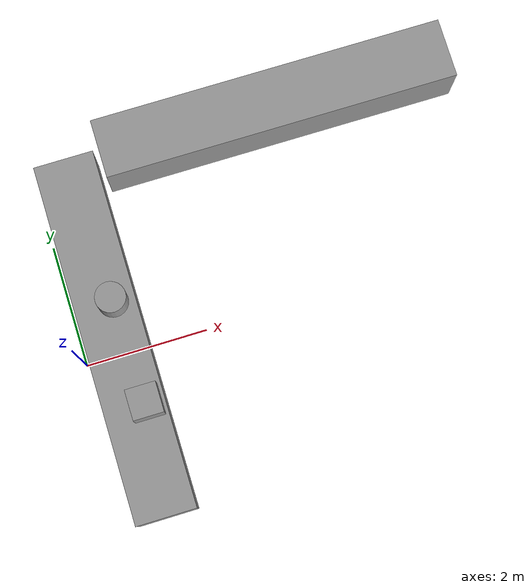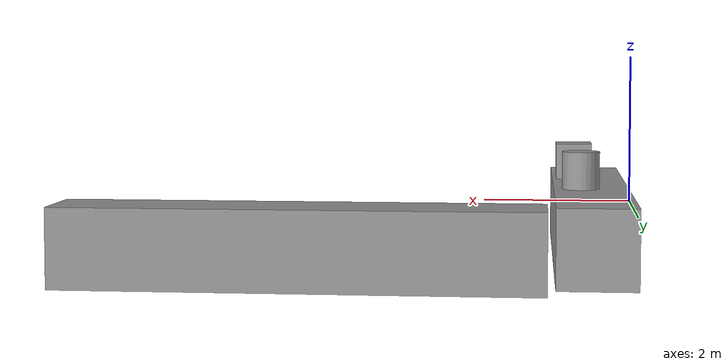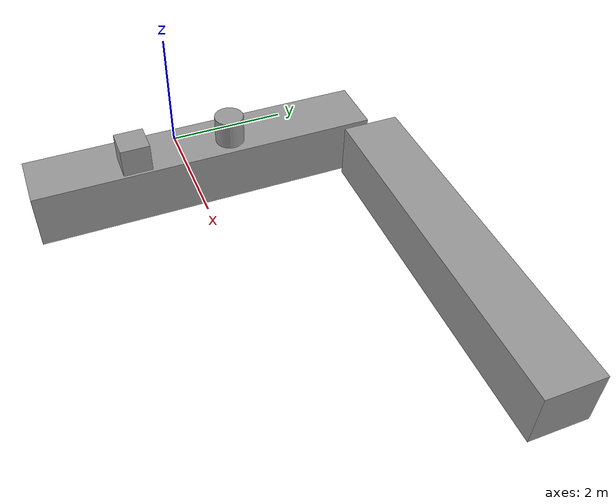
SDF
<?xml version='1.0'?>
<sdf version='1.6'>
  <model name='test'>
    <link name='link_0'>
      <inertial>
        <mass>3.59134</mass>
        <inertia>
          <ixx>10.0363</ixx>
          <ixy>0</ixy>
          <ixz>0</ixz>
          <iyy>0.417919</iyy>
          <iyz>0</iyz>
          <izz>9.85568</izz>
        </inertia>
        <pose frame=''>0 0 0 0 -0 0</pose>
      </inertial>
      <pose frame=''>0.553332 0.333334 -0.25 0 -0 0</pose>
      <gravity>1</gravity>
      <self_collide>0</self_collide>
      <kinematic>0</kinematic>
      <enable_wind>0</enable_wind>
      <visual name='visual'>
        <pose frame=''>0 0 0 0 -0 0</pose>
        <geometry>
          <box>
            <size>1 6 1</size>
          </box>
        </geometry>
        <material>
          <lighting>1</lighting>
          <script>
            <uri>file://media/materials/scripts/gazebo.material</uri>
            <name>Gazebo/Grey</name>
          </script>
          <shader type='vertex'>
            <normal_map>__default__</normal_map>
          </shader>
          <ambient>0.3 0.3 0.3 1</ambient>
          <diffuse>0.7 0.7 0.7 1</diffuse>
          <specular>0.01 0.01 0.01 1</specular>
          <emissive>0 0 0 1</emissive>
        </material>
        <transparency>0</transparency>
        <cast_shadows>1</cast_shadows>
      </visual>
      <collision name='collision'>
        <laser_retro>0</laser_retro>
        <max_contacts>10</max_contacts>
        <pose frame=''>0 0 0 0 -0 0</pose>
        <geometry>
          <box>
            <size>1 6 1</size>
          </box>
        </geometry>
        <surface>
          <friction>
            <ode>
              <mu>1</mu>
              <mu2>1</mu2>
              <fdir1>0 0 0</fdir1>
              <slip1>0</slip1>
              <slip2>0</slip2>
            </ode>
            <torsional>
              <coefficient>1</coefficient>
              <patch_radius>0</patch_radius>
              <surface_radius>0</surface_radius>
              <use_patch_radius>1</use_patch_radius>
              <ode>
                <slip>0</slip>
              </ode>
            </torsional>
          </friction>
          <bounce>
            <restitution_coefficient>0</restitution_coefficient>
            <threshold>1e+06</threshold>
          </bounce>
          <contact>
            <collide_without_contact>0</collide_without_contact>
            <collide_without_contact_bitmask>1</collide_without_contact_bitmask>
            <collide_bitmask>1</collide_bitmask>
            <ode>
              <soft_cfm>0</soft_cfm>
              <soft_erp>0.2</soft_erp>
              <kp>1e+13</kp>
              <kd>1</kd>
              <max_vel>0.01</max_vel>
              <min_depth>0</min_depth>
            </ode>
            <bullet>
              <split_impulse>1</split_impulse>
              <split_impulse_penetration_threshold>-0.01</split_impulse_penetration_threshold>
              <soft_cfm>0</soft_cfm>
              <soft_erp>0.2</soft_erp>
              <kp>1e+13</kp>
              <kd>1</kd>
            </bullet>
          </contact>
        </surface>
      </collision>
    </link>
    <link name='link_0_clone'>
      <inertial>
        <mass>3.59134</mass>
        <inertia>
          <ixx>10.0363</ixx>
          <ixy>0</ixy>
          <ixz>0</ixz>
          <iyy>0.417919</iyy>
          <iyz>0</iyz>
          <izz>9.85568</izz>
        </inertia>
        <pose frame=''>0 0 0 0 -0 0</pose>
      </inertial>
      <pose frame=''>4.15333 3.33333 -0.25 0 -0 1.57</pose>
      <gravity>1</gravity>
      <self_collide>0</self_collide>
      <kinematic>0</kinematic>
      <enable_wind>0</enable_wind>
      <visual name='visual'>
        <pose frame=''>0 0 0 0 -0 0</pose>
        <geometry>
          <box>
            <size>1 6 1</size>
          </box>
        </geometry>
        <material>
          <lighting>1</lighting>
          <script>
            <uri>file://media/materials/scripts/gazebo.material</uri>
            <name>Gazebo/Grey</name>
          </script>
          <shader type='vertex'>
            <normal_map>__default__</normal_map>
          </shader>
          <ambient>0.3 0.3 0.3 1</ambient>
          <diffuse>0.7 0.7 0.7 1</diffuse>
          <specular>0.01 0.01 0.01 1</specular>
          <emissive>0 0 0 1</emissive>
        </material>
        <transparency>0</transparency>
        <cast_shadows>1</cast_shadows>
      </visual>
      <collision name='collision'>
        <laser_retro>0</laser_retro>
        <max_contacts>10</max_contacts>
        <pose frame=''>0 0 0 0 -0 0</pose>
        <geometry>
          <box>
            <size>1 6 1</size>
          </box>
        </geometry>
        <surface>
          <friction>
            <ode>
              <mu>1</mu>
              <mu2>1</mu2>
              <fdir1>0 0 0</fdir1>
              <slip1>0</slip1>
              <slip2>0</slip2>
            </ode>
            <torsional>
              <coefficient>1</coefficient>
              <patch_radius>0</patch_radius>
              <surface_radius>0</surface_radius>
              <use_patch_radius>1</use_patch_radius>
              <ode>
                <slip>0</slip>
              </ode>
            </torsional>
          </friction>
          <bounce>
            <restitution_coefficient>0</restitution_coefficient>
            <threshold>1e+06</threshold>
          </bounce>
          <contact>
            <collide_without_contact>0</collide_without_contact>
            <collide_without_contact_bitmask>1</collide_without_contact_bitmask>
            <collide_bitmask>1</collide_bitmask>
            <ode>
              <soft_cfm>0</soft_cfm>
              <soft_erp>0.2</soft_erp>
              <kp>1e+13</kp>
              <kd>1</kd>
              <max_vel>0.01</max_vel>
              <min_depth>0</min_depth>
            </ode>
            <bullet>
              <split_impulse>1</split_impulse>
              <split_impulse_penetration_threshold>-0.01</split_impulse_penetration_threshold>
              <soft_cfm>0</soft_cfm>
              <soft_erp>0.2</soft_erp>
              <kp>1e+13</kp>
              <kd>1</kd>
            </bullet>
          </contact>
        </surface>
      </collision>
    </link>
    <link name='link_1'>
      <inertial>
        <mass>1</mass>
        <inertia>
          <ixx>0.145833</ixx>
          <ixy>0</ixy>
          <ixz>0</ixz>
          <iyy>0.145833</iyy>
          <iyz>0</iyz>
          <izz>0.125</izz>
        </inertia>
        <pose frame=''>0 0 0 0 -0 0</pose>
      </inertial>
      <pose frame=''>0.693332 0.833334 0.5 0 -0 0</pose>
      <gravity>1</gravity>
      <self_collide>0</self_collide>
      <kinematic>0</kinematic>
      <enable_wind>0</enable_wind>
      <visual name='visual'>
        <pose frame=''>0 0 0 0 -0 0</pose>
        <geometry>
          <cylinder>
            <radius>0.25</radius>
            <length>0.5</length>
          </cylinder>
        </geometry>
        <material>
          <lighting>1</lighting>
          <script>
            <uri>file://media/materials/scripts/gazebo.material</uri>
            <name>Gazebo/Grey</name>
          </script>
          <shader type='vertex'>
            <normal_map>__default__</normal_map>
          </shader>
          <ambient>0.3 0.3 0.3 1</ambient>
          <diffuse>0.7 0.7 0.7 1</diffuse>
          <specular>0.01 0.01 0.01 1</specular>
          <emissive>0 0 0 1</emissive>
        </material>
        <transparency>0</transparency>
        <cast_shadows>1</cast_shadows>
      </visual>
      <collision name='collision'>
        <laser_retro>0</laser_retro>
        <max_contacts>10</max_contacts>
        <pose frame=''>0 0 0 0 -0 0</pose>
        <geometry>
          <cylinder>
            <radius>0.25</radius>
            <length>0.5</length>
          </cylinder>
        </geometry>
        <surface>
          <friction>
            <ode>
              <mu>1</mu>
              <mu2>1</mu2>
              <fdir1>0 0 0</fdir1>
              <slip1>0</slip1>
              <slip2>0</slip2>
            </ode>
            <torsional>
              <coefficient>1</coefficient>
              <patch_radius>0</patch_radius>
              <surface_radius>0</surface_radius>
              <use_patch_radius>1</use_patch_radius>
              <ode>
                <slip>0</slip>
              </ode>
            </torsional>
          </friction>
          <bounce>
            <restitution_coefficient>0</restitution_coefficient>
            <threshold>1e+06</threshold>
          </bounce>
          <contact>
            <collide_without_contact>0</collide_without_contact>
            <collide_without_contact_bitmask>1</collide_without_contact_bitmask>
            <collide_bitmask>1</collide_bitmask>
            <ode>
              <soft_cfm>0</soft_cfm>
              <soft_erp>0.2</soft_erp>
              <kp>1e+13</kp>
              <kd>1</kd>
              <max_vel>0.01</max_vel>
              <min_depth>0</min_depth>
            </ode>
            <bullet>
              <split_impulse>1</split_impulse>
              <split_impulse_penetration_threshold>-0.01</split_impulse_penetration_threshold>
              <soft_cfm>0</soft_cfm>
              <soft_erp>0.2</soft_erp>
              <kp>1e+13</kp>
              <kd>1</kd>
            </bullet>
          </contact>
        </surface>
      </collision>
    </link>
    <link name='link_2'>
      <inertial>
        <mass>1</mass>
        <inertia>
          <ixx>0.166667</ixx>
          <ixy>0</ixy>
          <ixz>0</ixz>
          <iyy>0.166667</iyy>
          <iyz>0</iyz>
          <izz>0.166667</izz>
        </inertia>
        <pose frame=''>0 0 0 0 -0 0</pose>
      </inertial>
      <pose frame=''>0.749999 -0.878445 0.5 0 -0 0</pose>
      <gravity>1</gravity>
      <self_collide>0</self_collide>
      <kinematic>0</kinematic>
      <enable_wind>0</enable_wind>
      <visual name='visual'>
        <pose frame=''>0 0 0 0 -0 0</pose>
        <geometry>
          <box>
            <size>0.5 0.5 0.5</size>
          </box>
        </geometry>
        <material>
          <lighting>1</lighting>
          <script>
            <uri>file://media/materials/scripts/gazebo.material</uri>
            <name>Gazebo/Grey</name>
          </script>
          <shader type='vertex'>
            <normal_map>__default__</normal_map>
          </shader>
          <ambient>0.3 0.3 0.3 1</ambient>
          <diffuse>0.7 0.7 0.7 1</diffuse>
          <specular>0.01 0.01 0.01 1</specular>
          <emissive>0 0 0 1</emissive>
        </material>
        <transparency>0</transparency>
        <cast_shadows>1</cast_shadows>
      </visual>
      <collision name='collision'>
        <laser_retro>0</laser_retro>
        <max_contacts>10</max_contacts>
        <pose frame=''>0 0 0 0 -0 0</pose>
        <geometry>
          <box>
            <size>0.5 0.5 0.5</size>
          </box>
        </geometry>
        <surface>
          <friction>
            <ode>
              <mu>1</mu>
              <mu2>1</mu2>
              <fdir1>0 0 0</fdir1>
              <slip1>0</slip1>
              <slip2>0</slip2>
            </ode>
            <torsional>
              <coefficient>1</coefficient>
              <patch_radius>0</patch_radius>
              <surface_radius>0</surface_radius>
              <use_patch_radius>1</use_patch_radius>
              <ode>
                <slip>0</slip>
              </ode>
            </torsional>
          </friction>
          <bounce>
            <restitution_coefficient>0</restitution_coefficient>
            <threshold>1e+06</threshold>
          </bounce>
          <contact>
            <collide_without_contact>0</collide_without_contact>
            <collide_without_contact_bitmask>1</collide_without_contact_bitmask>
            <collide_bitmask>1</collide_bitmask>
            <ode>
              <soft_cfm>0</soft_cfm>
              <soft_erp>0.2</soft_erp>
              <kp>1e+13</kp>
              <kd>1</kd>
              <max_vel>0.01</max_vel>
              <min_depth>0</min_depth>
            </ode>
            <bullet>
              <split_impulse>1</split_impulse>
              <split_impulse_penetration_threshold>-0.01</split_impulse_penetration_threshold>
              <soft_cfm>0</soft_cfm>
              <soft_erp>0.2</soft_erp>
              <kp>1e+13</kp>
              <kd>1</kd>
            </bullet>
          </contact>
        </surface>
      </collision>
    </link>
    <joint name='link_0_JOINT_0' type='fixed'>
      <parent>link_0</parent>
      <child>link_2</child>
      <pose frame=''>0 0 0 0 -0 0</pose>
      <physics>
        <ode>
          <limit>
            <cfm>0</cfm>
            <erp>0.2</erp>
          </limit>
          <suspension>
            <cfm>0</cfm>
            <erp>0.2</erp>
          </suspension>
        </ode>
      </physics>
    </joint>
    <joint name='link_0_JOINT_1' type='fixed'>
      <parent>link_0</parent>
      <child>link_1</child>
      <pose frame=''>0 0 0 0 -0 0</pose>
      <physics>
        <ode>
          <limit>
            <cfm>0</cfm>
            <erp>0.2</erp>
          </limit>
          <suspension>
            <cfm>0</cfm>
            <erp>0.2</erp>
          </suspension>
        </ode>
      </physics>
    </joint>
    <static>0</static>
    <allow_auto_disable>1</allow_auto_disable>
  </model>
</sdf>
